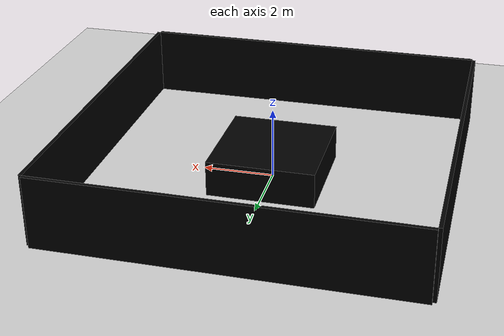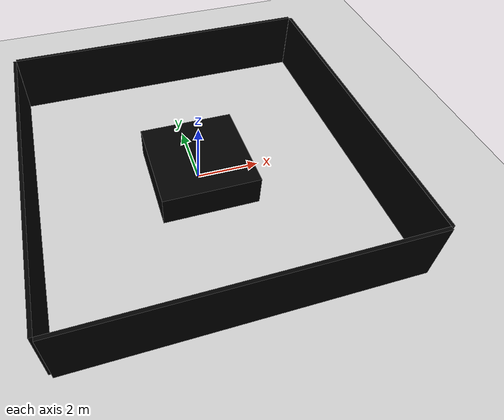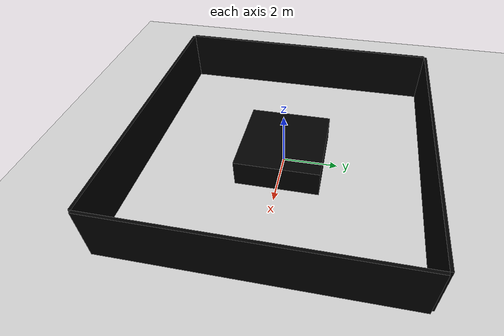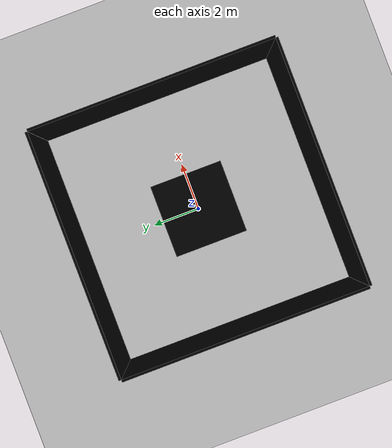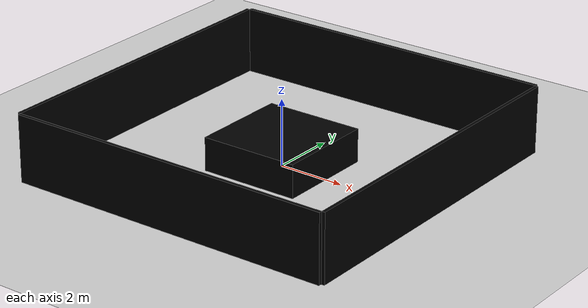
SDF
<?xml version="1.0" ?>
<sdf version="1.5">
  <world name="default">
    <include>
      <uri>model://sun</uri>
    </include>
    <include>
      <uri>model://ground_plane</uri>
    </include>
    <include>
      <name>wall</name>
      <uri>model://wall</uri>
      <pose>-5.1 -5.0 0.0 0 0 0</pose>
      <static>true</static>
    </include>
    <include>
      <name>wall</name>
      <uri>model://wall</uri>
      <pose>5.0 -5.0 0.0 0 0 0</pose>
      <static>true</static>
    </include>
    <include>
      <name>wall</name>
      <uri>model://wall</uri>
      <pose>-5.0 5.1 0.0 0 0 -1.57</pose>
      <static>true</static>
    </include>
    <include>
      <name>wall</name>
      <uri>model://wall</uri>
      <pose>-5.0 -5.0 0.0 0 0 -1.57</pose>
      <static>true</static>
    </include>

    <include>
      <name>obstacle</name>
      <uri>model://obstacle</uri>
      <pose>-1.5 -1.5 0.0 0 0 0.0</pose>
      <static>true</static>
    </include>
  </world>
</sdf>

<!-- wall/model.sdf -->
<sdf version="1.4">
<model name="wall">
  <link name="link">
    <pose>0.05 5.0 1.0 0 0 0</pose>
      <inertial>
        <mass>1.0</mass>
        <inertia>
          <ixx>0.083</ixx>
          <ixy>0.0</ixy>
          <ixz>0.0</ixz>
          <iyy>0.083</iyy>
          <iyz>0.0</iyz>
          <izz>0.083</izz>
        </inertia>
      </inertial>
      <collision name="collision">
        <geometry>
          <box>
            <size>0.10 10.0 2.0</size>
          </box>
        </geometry>
      </collision>
      <visual name="visual">
	<material>
            <ambient>0.0 0.0 0.0 1</ambient>
            <diffuse>0.0 0.0 0.0 1</diffuse>
            <specular>0 0 0 1</specular>
            <emissive>0.0 0.0 0.0 1</emissive>
        </material>
        <geometry>
          <box>
            <size>0.10 10.0 2.0</size>
          </box>
        </geometry>
      </visual>
    </link>
  </model>
</sdf>

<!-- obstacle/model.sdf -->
<sdf version="1.5">
<model name="obstacle">
  <link name="link">
    <pose>1.5 1.5 0.5 0 0 0</pose>
      <inertial>
        <mass>1.0</mass>
        <inertia>
          <ixx>0.083</ixx>
          <ixy>0.0</ixy>
          <ixz>0.0</ixz>
          <iyy>0.083</iyy>
          <iyz>0.0</iyz>
          <izz>0.083</izz>
        </inertia>
      </inertial>
      <collision name="collision">
        <geometry>
          <box>
            <size>3.0 3.0 1.0</size>
          </box>
        </geometry>
      </collision>
      <visual name="visual">
	<material>
            <ambient>1 0 0 1</ambient>
            <diffuse>0 0 0 1</diffuse>
            <specular>1 0 0 1</specular>
            <emissive>1 0 0 1</emissive>
        </material>
        <geometry>
          <box>
            <size>3.0 3.0 1.0</size>
          </box>
        </geometry>
      </visual>
    </link>
  </model>
</sdf>
